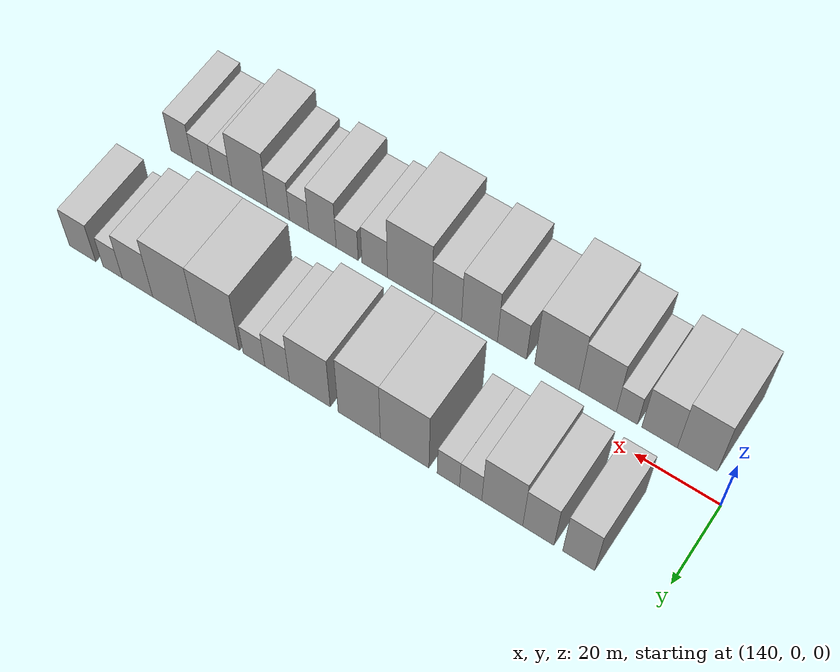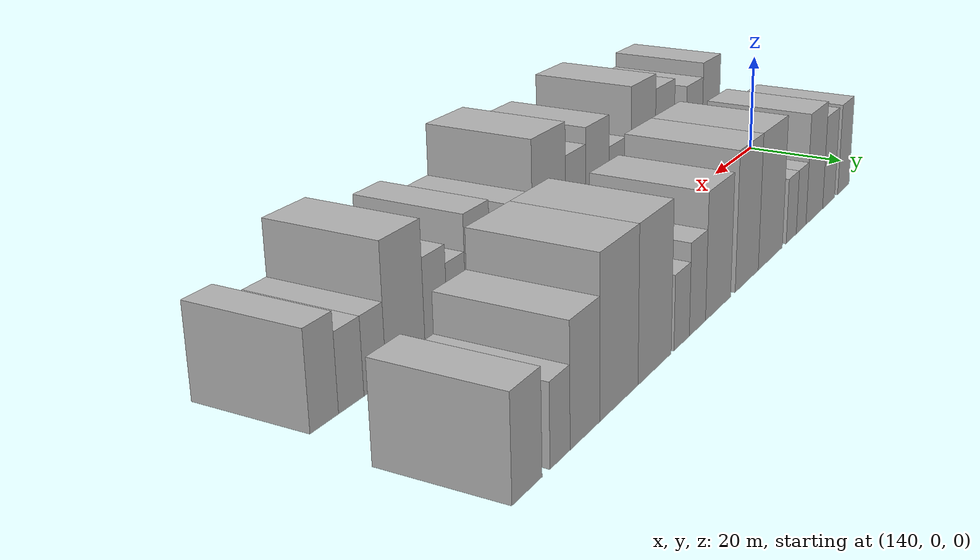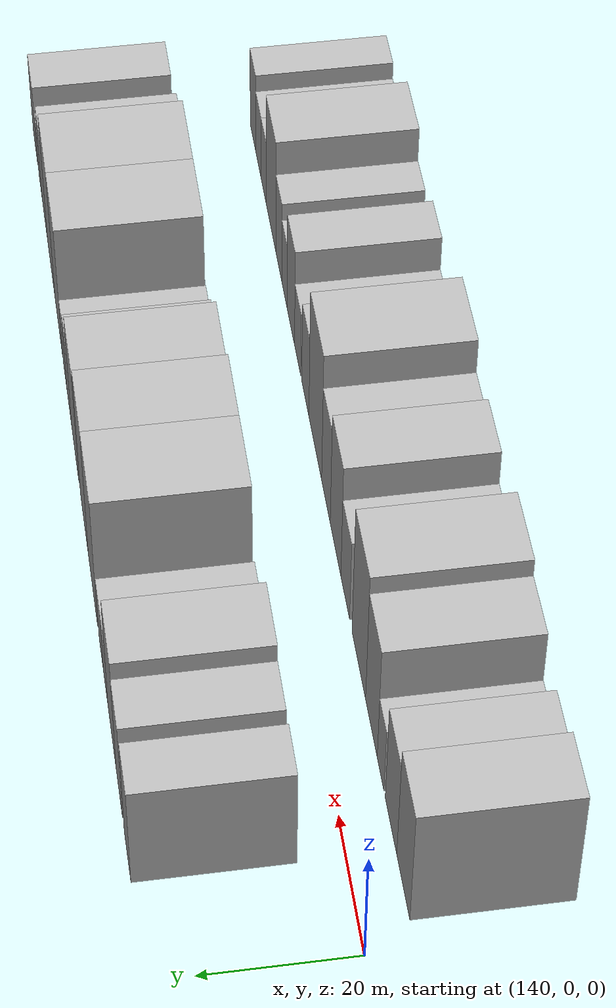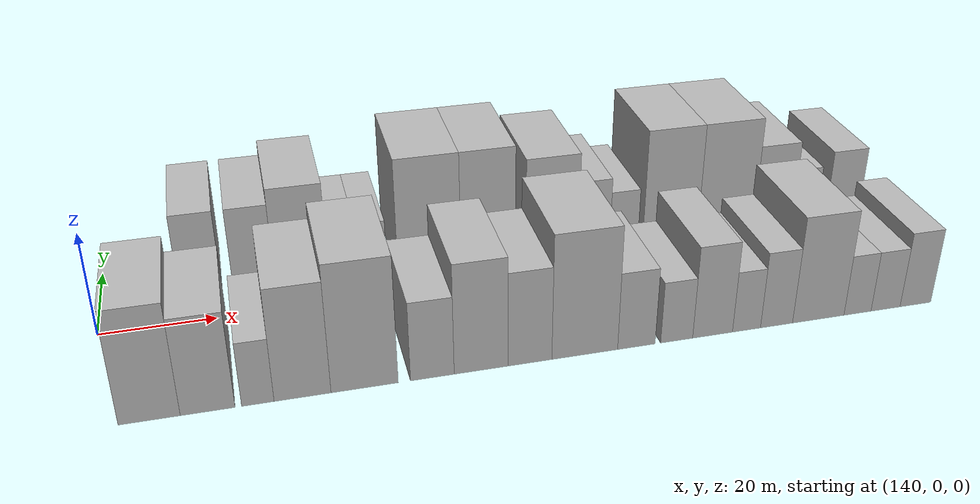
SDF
<sdf version="1.6">
 <world name="default">
  <model name="building_18">
   <static>1</static>
   <pose>157.6105 16.0000 0 0.000000 0.000000 1.570796</pose>
   <link name="link">
    <pose>0 0 9.00 0 0 0</pose>
    <collision name="collision"><geometry><box><size>20.0000 7.4056 18.0000</size></box></geometry></collision>
    <visual name="visual">
     <cast_shadows>0</cast_shadows>
     <geometry><box><size>20.0000 7.4056 18.0000</size></box></geometry>
     <material>
      <script>
       <uri>model://HANNAS_wall/materials/scripts</uri>
       <uri>model://HANNAS_wall/materials/textures</uri>
       <name>vrc/HANNAS_wall</name>
      </script>
     </material>
    </visual>
   </link>
  </model>
  <model name="building_19">
   <static>1</static>
   <pose>166.9849 16.0000 0 0.000000 0.000000 1.570796</pose>
   <link name="link">
    <pose>0 0 9.00 0 0 0</pose>
    <collision name="collision"><geometry><box><size>20.0000 7.3432 18.0000</size></box></geometry></collision>
    <visual name="visual">
     <cast_shadows>0</cast_shadows>
     <geometry><box><size>20.0000 7.3432 18.0000</size></box></geometry>
     <material>
      <script>
       <uri>model://HANNAS_wall/materials/scripts</uri>
       <uri>model://HANNAS_wall/materials/textures</uri>
       <name>vrc/HANNAS_wall</name>
      </script>
     </material>
    </visual>
   </link>
  </model>
  <model name="building_20">
   <static>1</static>
   <pose>175.5093 16.0000 0 0.000000 0.000000 1.570796</pose>
   <link name="link">
    <pose>0 0 10.50 0 0 0</pose>
    <collision name="collision"><geometry><box><size>20.0000 9.7057 21.0000</size></box></geometry></collision>
    <visual name="visual">
     <cast_shadows>0</cast_shadows>
     <geometry><box><size>20.0000 9.7057 21.0000</size></box></geometry>
     <material>
      <script>
       <uri>model://HANNAS_wall/materials/scripts</uri>
       <uri>model://HANNAS_wall/materials/textures</uri>
       <name>vrc/HANNAS_wall</name>
      </script>
     </material>
    </visual>
   </link>
  </model>
  <model name="building_21">
   <static>1</static>
   <pose>183.0260 16.0000 0 0.000000 0.000000 1.570796</pose>
   <link name="link">
    <pose>0 0 6.00 0 0 0</pose>
    <collision name="collision"><geometry><box><size>20.0000 5.3277 12.0000</size></box></geometry></collision>
    <visual name="visual">
     <cast_shadows>0</cast_shadows>
     <geometry><box><size>20.0000 5.3277 12.0000</size></box></geometry>
     <material>
      <script>
       <uri>model://HANNAS_wall/materials/scripts</uri>
       <uri>model://HANNAS_wall/materials/textures</uri>
       <name>vrc/HANNAS_wall</name>
      </script>
     </material>
    </visual>
   </link>
  </model>
  <model name="building_22">
   <static>1</static>
   <pose>188.3907 16.0000 0 0.000000 0.000000 1.570796</pose>
   <link name="link">
    <pose>0 0 6.00 0 0 0</pose>
    <collision name="collision"><geometry><box><size>20.0000 5.4015 12.0000</size></box></geometry></collision>
    <visual name="visual">
     <cast_shadows>0</cast_shadows>
     <geometry><box><size>20.0000 5.4015 12.0000</size></box></geometry>
     <material>
      <script>
       <uri>model://HANNAS_wall/materials/scripts</uri>
       <uri>model://HANNAS_wall/materials/textures</uri>
       <name>vrc/HANNAS_wall</name>
      </script>
     </material>
    </visual>
   </link>
  </model>
  <model name="building_23">
   <static>1</static>
   <pose>199.0637 16.0000 0 0.000000 0.000000 1.570796</pose>
   <link name="link">
    <pose>0 0 12.00 0 0 0</pose>
    <collision name="collision"><geometry><box><size>20.0000 11.9444 24.0000</size></box></geometry></collision>
    <visual name="visual">
     <cast_shadows>0</cast_shadows>
     <geometry><box><size>20.0000 11.9444 24.0000</size></box></geometry>
     <material>
      <script>
       <uri>model://HANNAS_wall/materials/scripts</uri>
       <uri>model://HANNAS_wall/materials/textures</uri>
       <name>vrc/HANNAS_wall</name>
      </script>
     </material>
    </visual>
   </link>
  </model>
  <model name="building_24">
   <static>1</static>
   <pose>210.3051 16.0000 0 0.000000 0.000000 1.570796</pose>
   <link name="link">
    <pose>0 0 12.00 0 0 0</pose>
    <collision name="collision"><geometry><box><size>20.0000 10.5384 24.0000</size></box></geometry></collision>
    <visual name="visual">
     <cast_shadows>0</cast_shadows>
     <geometry><box><size>20.0000 10.5384 24.0000</size></box></geometry>
     <material>
      <script>
       <uri>model://HANNAS_wall/materials/scripts</uri>
       <uri>model://HANNAS_wall/materials/textures</uri>
       <name>vrc/HANNAS_wall</name>
      </script>
     </material>
    </visual>
   </link>
  </model>
  <model name="building_25">
   <static>1</static>
   <pose>222.7786 16.0000 0 0.000000 0.000000 1.570796</pose>
   <link name="link">
    <pose>0 0 10.50 0 0 0</pose>
    <collision name="collision"><geometry><box><size>20.0000 10.4088 21.0000</size></box></geometry></collision>
    <visual name="visual">
     <cast_shadows>0</cast_shadows>
     <geometry><box><size>20.0000 10.4088 21.0000</size></box></geometry>
     <material>
      <script>
       <uri>model://HANNAS_wall/materials/scripts</uri>
       <uri>model://HANNAS_wall/materials/textures</uri>
       <name>vrc/HANNAS_wall</name>
      </script>
     </material>
    </visual>
   </link>
  </model>
  <model name="building_26">
   <static>1</static>
   <pose>231.1399 16.0000 0 0.000000 0.000000 1.570796</pose>
   <link name="link">
    <pose>0 0 7.50 0 0 0</pose>
    <collision name="collision"><geometry><box><size>20.0000 6.3137 15.0000</size></box></geometry></collision>
    <visual name="visual">
     <cast_shadows>0</cast_shadows>
     <geometry><box><size>20.0000 6.3137 15.0000</size></box></geometry>
     <material>
      <script>
       <uri>model://HANNAS_wall/materials/scripts</uri>
       <uri>model://HANNAS_wall/materials/textures</uri>
       <name>vrc/HANNAS_wall</name>
      </script>
     </material>
    </visual>
   </link>
  </model>
  <model name="building_27">
   <static>1</static>
   <pose>237.1442 16.0000 0 0.000000 0.000000 1.570796</pose>
   <link name="link">
    <pose>0 0 6.00 0 0 0</pose>
    <collision name="collision"><geometry><box><size>20.0000 5.6949 12.0000</size></box></geometry></collision>
    <visual name="visual">
     <cast_shadows>0</cast_shadows>
     <geometry><box><size>20.0000 5.6949 12.0000</size></box></geometry>
     <material>
      <script>
       <uri>model://HANNAS_wall/materials/scripts</uri>
       <uri>model://HANNAS_wall/materials/textures</uri>
       <name>vrc/HANNAS_wall</name>
      </script>
     </material>
    </visual>
   </link>
  </model>
  <model name="building_28">
   <static>1</static>
   <pose>246.6571 16.0000 0 0.000000 0.000000 1.570796</pose>
   <link name="link">
    <pose>0 0 12.00 0 0 0</pose>
    <collision name="collision"><geometry><box><size>20.0000 11.3309 24.0000</size></box></geometry></collision>
    <visual name="visual">
     <cast_shadows>0</cast_shadows>
     <geometry><box><size>20.0000 11.3309 24.0000</size></box></geometry>
     <material>
      <script>
       <uri>model://HANNAS_wall/materials/scripts</uri>
       <uri>model://HANNAS_wall/materials/textures</uri>
       <name>vrc/HANNAS_wall</name>
      </script>
     </material>
    </visual>
   </link>
  </model>
  <model name="building_29">
   <static>1</static>
   <pose>258.2216 16.0000 0 0.000000 0.000000 1.570796</pose>
   <link name="link">
    <pose>0 0 12.00 0 0 0</pose>
    <collision name="collision"><geometry><box><size>20.0000 11.7980 24.0000</size></box></geometry></collision>
    <visual name="visual">
     <cast_shadows>0</cast_shadows>
     <geometry><box><size>20.0000 11.7980 24.0000</size></box></geometry>
     <material>
      <script>
       <uri>model://HANNAS_wall/materials/scripts</uri>
       <uri>model://HANNAS_wall/materials/textures</uri>
       <name>vrc/HANNAS_wall</name>
      </script>
     </material>
    </visual>
   </link>
  </model>
  <model name="building_30">
   <static>1</static>
   <pose>268.2903 16.0000 0 0.000000 0.000000 1.570796</pose>
   <link name="link">
    <pose>0 0 9.00 0 0 0</pose>
    <collision name="collision"><geometry><box><size>20.0000 8.3393 18.0000</size></box></geometry></collision>
    <visual name="visual">
     <cast_shadows>0</cast_shadows>
     <geometry><box><size>20.0000 8.3393 18.0000</size></box></geometry>
     <material>
      <script>
       <uri>model://HANNAS_wall/materials/scripts</uri>
       <uri>model://HANNAS_wall/materials/textures</uri>
       <name>vrc/HANNAS_wall</name>
      </script>
     </material>
    </visual>
   </link>
  </model>
  <model name="building_31">
   <static>1</static>
   <pose>275.1168 16.0000 0 0.000000 0.000000 1.570796</pose>
   <link name="link">
    <pose>0 0 6.00 0 0 0</pose>
    <collision name="collision"><geometry><box><size>20.0000 5.3137 12.0000</size></box></geometry></collision>
    <visual name="visual">
     <cast_shadows>0</cast_shadows>
     <geometry><box><size>20.0000 5.3137 12.0000</size></box></geometry>
     <material>
      <script>
       <uri>model://HANNAS_wall/materials/scripts</uri>
       <uri>model://HANNAS_wall/materials/textures</uri>
       <name>vrc/HANNAS_wall</name>
      </script>
     </material>
    </visual>
   </link>
  </model>
  <model name="building_32">
   <static>1</static>
   <pose>283.4479 16.0000 0 0.000000 0.000000 1.570796</pose>
   <link name="link">
    <pose>0 0 7.50 0 0 0</pose>
    <collision name="collision"><geometry><box><size>20.0000 7.3486 15.0000</size></box></geometry></collision>
    <visual name="visual">
     <cast_shadows>0</cast_shadows>
     <geometry><box><size>20.0000 7.3486 15.0000</size></box></geometry>
     <material>
      <script>
       <uri>model://HANNAS_wall/materials/scripts</uri>
       <uri>model://HANNAS_wall/materials/textures</uri>
       <name>vrc/HANNAS_wall</name>
      </script>
     </material>
    </visual>
   </link>
  </model>
  <model name="building_47">
   <static>1</static>
   <pose>148.7416 -16.0000 0 0.000000 0.000000 1.570796</pose>
   <link name="link">
    <pose>0 0 10.50 0 0 0</pose>
    <collision name="collision"><geometry><box><size>20.0000 9.3226 21.0000</size></box></geometry></collision>
    <visual name="visual">
     <cast_shadows>0</cast_shadows>
     <geometry><box><size>20.0000 9.3226 21.0000</size></box></geometry>
     <material>
      <script>
       <uri>model://HANNAS_wall/materials/scripts</uri>
       <uri>model://HANNAS_wall/materials/textures</uri>
       <name>vrc/HANNAS_wall</name>
      </script>
     </material>
    </visual>
   </link>
  </model>
  <model name="building_48">
   <static>1</static>
   <pose>157.5976 -16.0000 0 0.000000 0.000000 1.570796</pose>
   <link name="link">
    <pose>0 0 9.00 0 0 0</pose>
    <collision name="collision"><geometry><box><size>20.0000 8.3894 18.0000</size></box></geometry></collision>
    <visual name="visual">
     <cast_shadows>0</cast_shadows>
     <geometry><box><size>20.0000 8.3894 18.0000</size></box></geometry>
     <material>
      <script>
       <uri>model://HANNAS_wall/materials/scripts</uri>
       <uri>model://HANNAS_wall/materials/textures</uri>
       <name>vrc/HANNAS_wall</name>
      </script>
     </material>
    </visual>
   </link>
  </model>
  <model name="building_49">
   <static>1</static>
   <pose>165.3166 -16.0000 0 0.000000 0.000000 1.570796</pose>
   <link name="link">
    <pose>0 0 6.00 0 0 0</pose>
    <collision name="collision"><geometry><box><size>20.0000 5.0486 12.0000</size></box></geometry></collision>
    <visual name="visual">
     <cast_shadows>0</cast_shadows>
     <geometry><box><size>20.0000 5.0486 12.0000</size></box></geometry>
     <material>
      <script>
       <uri>model://HANNAS_wall/materials/scripts</uri>
       <uri>model://HANNAS_wall/materials/textures</uri>
       <name>vrc/HANNAS_wall</name>
      </script>
     </material>
    </visual>
   </link>
  </model>
  <model name="building_50">
   <static>1</static>
   <pose>172.3421 -16.0000 0 0.000000 0.000000 1.570796</pose>
   <link name="link">
    <pose>0 0 10.50 0 0 0</pose>
    <collision name="collision"><geometry><box><size>20.0000 9.0023 21.0000</size></box></geometry></collision>
    <visual name="visual">
     <cast_shadows>0</cast_shadows>
     <geometry><box><size>20.0000 9.0023 21.0000</size></box></geometry>
     <material>
      <script>
       <uri>model://HANNAS_wall/materials/scripts</uri>
       <uri>model://HANNAS_wall/materials/textures</uri>
       <name>vrc/HANNAS_wall</name>
      </script>
     </material>
    </visual>
   </link>
  </model>
  <model name="building_51">
   <static>1</static>
   <pose>182.2715 -16.0000 0 0.000000 0.000000 1.570796</pose>
   <link name="link">
    <pose>0 0 12.00 0 0 0</pose>
    <collision name="collision"><geometry><box><size>20.0000 10.8565 24.0000</size></box></geometry></collision>
    <visual name="visual">
     <cast_shadows>0</cast_shadows>
     <geometry><box><size>20.0000 10.8565 24.0000</size></box></geometry>
     <material>
      <script>
       <uri>model://HANNAS_wall/materials/scripts</uri>
       <uri>model://HANNAS_wall/materials/textures</uri>
       <name>vrc/HANNAS_wall</name>
      </script>
     </material>
    </visual>
   </link>
  </model>
  <model name="building_52">
   <static>1</static>
   <pose>193.3189 -16.0000 0 0.000000 0.000000 1.570796</pose>
   <link name="link">
    <pose>0 0 7.50 0 0 0</pose>
    <collision name="collision"><geometry><box><size>20.0000 7.2383 15.0000</size></box></geometry></collision>
    <visual name="visual">
     <cast_shadows>0</cast_shadows>
     <geometry><box><size>20.0000 7.2383 15.0000</size></box></geometry>
     <material>
      <script>
       <uri>model://HANNAS_wall/materials/scripts</uri>
       <uri>model://HANNAS_wall/materials/textures</uri>
       <name>vrc/HANNAS_wall</name>
      </script>
     </material>
    </visual>
   </link>
  </model>
  <model name="building_53">
   <static>1</static>
   <pose>201.4748 -16.0000 0 0.000000 0.000000 1.570796</pose>
   <link name="link">
    <pose>0 0 10.50 0 0 0</pose>
    <collision name="collision"><geometry><box><size>20.0000 9.0736 21.0000</size></box></geometry></collision>
    <visual name="visual">
     <cast_shadows>0</cast_shadows>
     <geometry><box><size>20.0000 9.0736 21.0000</size></box></geometry>
     <material>
      <script>
       <uri>model://HANNAS_wall/materials/scripts</uri>
       <uri>model://HANNAS_wall/materials/textures</uri>
       <name>vrc/HANNAS_wall</name>
      </script>
     </material>
    </visual>
   </link>
  </model>
  <model name="building_54">
   <static>1</static>
   <pose>209.7642 -16.0000 0 0.000000 0.000000 1.570796</pose>
   <link name="link">
    <pose>0 0 9.00 0 0 0</pose>
    <collision name="collision"><geometry><box><size>20.0000 7.5051 18.0000</size></box></geometry></collision>
    <visual name="visual">
     <cast_shadows>0</cast_shadows>
     <geometry><box><size>20.0000 7.5051 18.0000</size></box></geometry>
     <material>
      <script>
       <uri>model://HANNAS_wall/materials/scripts</uri>
       <uri>model://HANNAS_wall/materials/textures</uri>
       <name>vrc/HANNAS_wall</name>
      </script>
     </material>
    </visual>
   </link>
  </model>
  <model name="building_55">
   <static>1</static>
   <pose>219.2790 -16.0000 0 0.000000 0.000000 1.570796</pose>
   <link name="link">
    <pose>0 0 12.00 0 0 0</pose>
    <collision name="collision"><geometry><box><size>20.0000 11.5245 24.0000</size></box></geometry></collision>
    <visual name="visual">
     <cast_shadows>0</cast_shadows>
     <geometry><box><size>20.0000 11.5245 24.0000</size></box></geometry>
     <material>
      <script>
       <uri>model://HANNAS_wall/materials/scripts</uri>
       <uri>model://HANNAS_wall/materials/textures</uri>
       <name>vrc/HANNAS_wall</name>
      </script>
     </material>
    </visual>
   </link>
  </model>
  <model name="building_56">
   <static>1</static>
   <pose>228.3842 -16.0000 0 0.000000 0.000000 1.570796</pose>
   <link name="link">
    <pose>0 0 7.50 0 0 0</pose>
    <collision name="collision"><geometry><box><size>20.0000 6.6860 15.0000</size></box></geometry></collision>
    <visual name="visual">
     <cast_shadows>0</cast_shadows>
     <geometry><box><size>20.0000 6.6860 15.0000</size></box></geometry>
     <material>
      <script>
       <uri>model://HANNAS_wall/materials/scripts</uri>
       <uri>model://HANNAS_wall/materials/textures</uri>
       <name>vrc/HANNAS_wall</name>
      </script>
     </material>
    </visual>
   </link>
  </model>
  <model name="building_57">
   <static>1</static>
   <pose>235.6269 -16.0000 0 0.000000 0.000000 1.570796</pose>
   <link name="link">
    <pose>0 0 6.00 0 0 0</pose>
    <collision name="collision"><geometry><box><size>20.0000 5.7994 12.0000</size></box></geometry></collision>
    <visual name="visual">
     <cast_shadows>0</cast_shadows>
     <geometry><box><size>20.0000 5.7994 12.0000</size></box></geometry>
     <material>
      <script>
       <uri>model://HANNAS_wall/materials/scripts</uri>
       <uri>model://HANNAS_wall/materials/textures</uri>
       <name>vrc/HANNAS_wall</name>
      </script>
     </material>
    </visual>
   </link>
  </model>
  <model name="building_58">
   <static>1</static>
   <pose>242.1808 -16.0000 0 0.000000 0.000000 1.570796</pose>
   <link name="link">
    <pose>0 0 9.00 0 0 0</pose>
    <collision name="collision"><geometry><box><size>20.0000 7.3084 18.0000</size></box></geometry></collision>
    <visual name="visual">
     <cast_shadows>0</cast_shadows>
     <geometry><box><size>20.0000 7.3084 18.0000</size></box></geometry>
     <material>
      <script>
       <uri>model://HANNAS_wall/materials/scripts</uri>
       <uri>model://HANNAS_wall/materials/textures</uri>
       <name>vrc/HANNAS_wall</name>
      </script>
     </material>
    </visual>
   </link>
  </model>
  <model name="building_59">
   <static>1</static>
   <pose>248.4457 -16.0000 0 0.000000 0.000000 1.570796</pose>
   <link name="link">
    <pose>0 0 6.00 0 0 0</pose>
    <collision name="collision"><geometry><box><size>20.0000 5.2215 12.0000</size></box></geometry></collision>
    <visual name="visual">
     <cast_shadows>0</cast_shadows>
     <geometry><box><size>20.0000 5.2215 12.0000</size></box></geometry>
     <material>
      <script>
       <uri>model://HANNAS_wall/materials/scripts</uri>
       <uri>model://HANNAS_wall/materials/textures</uri>
       <name>vrc/HANNAS_wall</name>
      </script>
     </material>
    </visual>
   </link>
  </model>
  <model name="building_60">
   <static>1</static>
   <pose>254.0720 -16.0000 0 0.000000 0.000000 1.570796</pose>
   <link name="link">
    <pose>0 0 7.50 0 0 0</pose>
    <collision name="collision"><geometry><box><size>20.0000 6.0310 15.0000</size></box></geometry></collision>
    <visual name="visual">
     <cast_shadows>0</cast_shadows>
     <geometry><box><size>20.0000 6.0310 15.0000</size></box></geometry>
     <material>
      <script>
       <uri>model://HANNAS_wall/materials/scripts</uri>
       <uri>model://HANNAS_wall/materials/textures</uri>
       <name>vrc/HANNAS_wall</name>
      </script>
     </material>
    </visual>
   </link>
  </model>
  <model name="building_61">
   <static>1</static>
   <pose>262.0137 -16.0000 0 0.000000 0.000000 1.570796</pose>
   <link name="link">
    <pose>0 0 10.50 0 0 0</pose>
    <collision name="collision"><geometry><box><size>20.0000 9.8523 21.0000</size></box></geometry></collision>
    <visual name="visual">
     <cast_shadows>0</cast_shadows>
     <geometry><box><size>20.0000 9.8523 21.0000</size></box></geometry>
     <material>
      <script>
       <uri>model://HANNAS_wall/materials/scripts</uri>
       <uri>model://HANNAS_wall/materials/textures</uri>
       <name>vrc/HANNAS_wall</name>
      </script>
     </material>
    </visual>
   </link>
  </model>
  <model name="building_62">
   <static>1</static>
   <pose>269.5707 -16.0000 0 0.000000 0.000000 1.570796</pose>
   <link name="link">
    <pose>0 0 6.00 0 0 0</pose>
    <collision name="collision"><geometry><box><size>20.0000 5.2618 12.0000</size></box></geometry></collision>
    <visual name="visual">
     <cast_shadows>0</cast_shadows>
     <geometry><box><size>20.0000 5.2618 12.0000</size></box></geometry>
     <material>
      <script>
       <uri>model://HANNAS_wall/materials/scripts</uri>
       <uri>model://HANNAS_wall/materials/textures</uri>
       <name>vrc/HANNAS_wall</name>
      </script>
     </material>
    </visual>
   </link>
  </model>
  <model name="building_63">
   <static>1</static>
   <pose>275.0530 -16.0000 0 0.000000 0.000000 1.570796</pose>
   <link name="link">
    <pose>0 0 6.00 0 0 0</pose>
    <collision name="collision"><geometry><box><size>20.0000 5.7027 12.0000</size></box></geometry></collision>
    <visual name="visual">
     <cast_shadows>0</cast_shadows>
     <geometry><box><size>20.0000 5.7027 12.0000</size></box></geometry>
     <material>
      <script>
       <uri>model://HANNAS_wall/materials/scripts</uri>
       <uri>model://HANNAS_wall/materials/textures</uri>
       <name>vrc/HANNAS_wall</name>
      </script>
     </material>
    </visual>
   </link>
  </model>
  <model name="building_64">
   <static>1</static>
   <pose>280.9532 -16.0000 0 0.000000 0.000000 1.570796</pose>
   <link name="link">
    <pose>0 0 7.50 0 0 0</pose>
    <collision name="collision"><geometry><box><size>20.0000 6.0976 15.0000</size></box></geometry></collision>
    <visual name="visual">
     <cast_shadows>0</cast_shadows>
     <geometry><box><size>20.0000 6.0976 15.0000</size></box></geometry>
     <material>
      <script>
       <uri>model://HANNAS_wall/materials/scripts</uri>
       <uri>model://HANNAS_wall/materials/textures</uri>
       <name>vrc/HANNAS_wall</name>
      </script>
     </material>
    </visual>
   </link>
  </model>
 </world>
</sdf>
